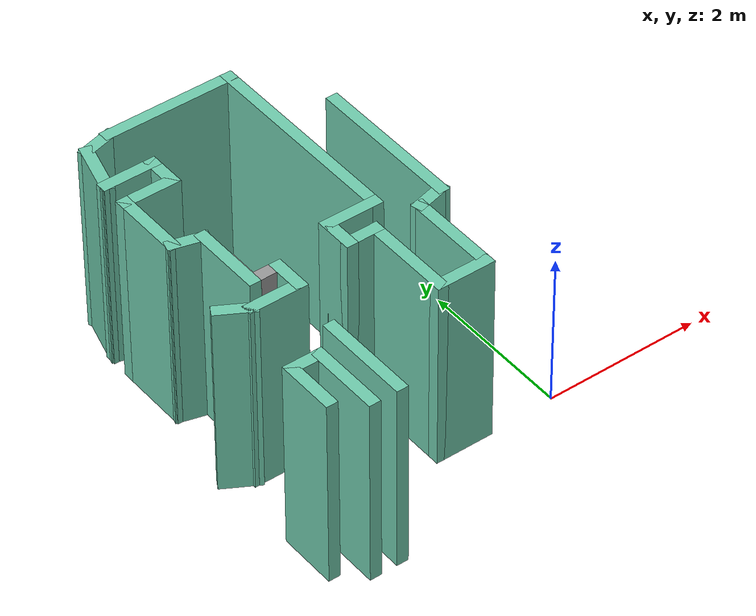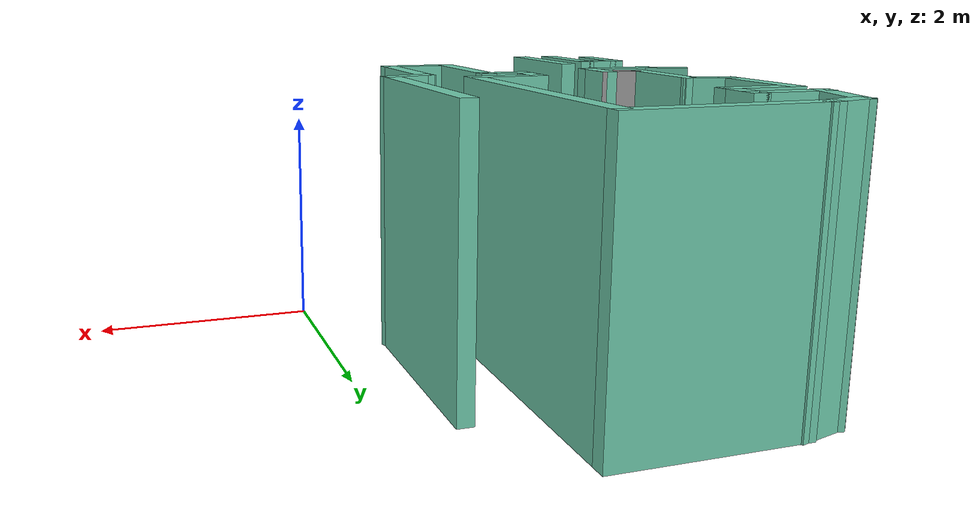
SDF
<sdf version="1.6">
 <world name="default">
  <model name="map_3">
   <pose>0.639107 -0.35531 0 0 -0 0</pose>
   <link name="Wall_10">
    <collision name="Wall_10_Collision">
     <geometry><box><size>0.5 0.15 2.5</size></box></geometry>
     <pose>0 0 1.25 0 -0 0</pose>
    </collision>
    <visual name="Wall_10_Visual">
     <pose>0 0 1.25 0 -0 0</pose>
     <geometry><box><size>0.5 0.15 2.5</size></box></geometry>
     <material>
      <script><uri>file://media/materials/scripts/gazebo.material</uri><name>Gazebo/Grey</name></script>
      <ambient>0.435294 0.796078 0.67451 1</ambient>
     </material>
     <meta><layer>0</layer></meta>
    </visual>
    <pose>-1.39882 1.53671 0 0 -0 -2.87979</pose>
   </link>
   <link name="Wall_11">
    <collision name="Wall_11_Collision">
     <geometry><box><size>1.25 0.15 2.5</size></box></geometry>
     <pose>0 0 1.25 0 -0 0</pose>
    </collision>
    <visual name="Wall_11_Visual">
     <pose>0 0 1.25 0 -0 0</pose>
     <geometry><box><size>1.25 0.15 2.5</size></box></geometry>
     <material>
      <script><uri>file://media/materials/scripts/gazebo.material</uri><name>Gazebo/Grey</name></script>
      <ambient>0.435294 0.796078 0.67451 1</ambient>
     </material>
     <meta><layer>0</layer></meta>
    </visual>
    <pose>-1.56786 0.941415 0 0 -0 -1.5708</pose>
   </link>
   <link name="Wall_12">
    <collision name="Wall_12_Collision">
     <geometry><box><size>0.75 0.15 2.5</size></box></geometry>
     <pose>0 0 1.25 0 -0 0</pose>
    </collision>
    <visual name="Wall_12_Visual">
     <pose>0 0 1.25 0 -0 0</pose>
     <geometry><box><size>0.75 0.15 2.5</size></box></geometry>
     <material>
      <script><uri>file://media/materials/scripts/gazebo.material</uri><name>Gazebo/Grey</name></script>
      <ambient>0.435294 0.796078 0.67451 1</ambient>
     </material>
     <meta><layer>0</layer></meta>
    </visual>
    <pose>-1.86786 0.391415 0 0 -0 3.14159</pose>
   </link>
   <link name="Wall_18">
    <collision name="Wall_18_Collision">
     <geometry><box><size>1.25 0.15 2.5</size></box></geometry>
     <pose>0 0 1.25 0 -0 0</pose>
    </collision>
    <visual name="Wall_18_Visual">
     <pose>0 0 1.25 0 -0 0</pose>
     <geometry><box><size>1.25 0.15 2.5</size></box></geometry>
     <material>
      <script><uri>file://media/materials/scripts/gazebo.material</uri><name>Gazebo/Grey</name></script>
      <ambient>0.435294 0.796078 0.67451 1</ambient>
     </material>
     <meta><layer>0</layer></meta>
    </visual>
    <pose>-2.16786 0.941415 0 0 -0 1.5708</pose>
   </link>
   <link name="Wall_19">
    <collision name="Wall_19_Collision">
     <geometry><box><size>0.5 0.15 2.5</size></box></geometry>
     <pose>0 0 1.25 0 -0 0</pose>
    </collision>
    <visual name="Wall_19_Visual">
     <pose>0 0 1.25 0 -0 0</pose>
     <geometry><box><size>0.5 0.15 2.5</size></box></geometry>
     <material>
      <script><uri>file://media/materials/scripts/gazebo.material</uri><name>Gazebo/Grey</name></script>
      <ambient>0.435294 0.796078 0.67451 1</ambient>
     </material>
     <meta><layer>0</layer></meta>
    </visual>
    <pose>-2.34286 1.49141 0 0 -0 3.14159</pose>
   </link>
   <link name="Wall_22">
    <collision name="Wall_22_Collision">
     <geometry><box><size>0.5 0.15 2.5</size></box></geometry>
     <pose>0 0 1.25 0 -0 0</pose>
    </collision>
    <visual name="Wall_22_Visual">
     <pose>0 0 1.25 0 -0 0</pose>
     <geometry><box><size>0.5 0.15 2.5</size></box></geometry>
     <material>
      <script><uri>file://media/materials/scripts/gazebo.material</uri><name>Gazebo/Grey</name></script>
      <ambient>0.435294 0.796078 0.67451 1</ambient>
     </material>
     <meta><layer>0</layer></meta>
    </visual>
    <pose>-2.51786 1.66641 0 0 -0 1.5708</pose>
   </link>
   <link name="Wall_23">
    <collision name="Wall_23_Collision">
     <geometry><box><size>0.75 0.15 2.5</size></box></geometry>
     <pose>0 0 1.25 0 -0 0</pose>
    </collision>
    <visual name="Wall_23_Visual">
     <pose>0 0 1.25 0 -0 0</pose>
     <geometry><box><size>0.75 0.15 2.5</size></box></geometry>
     <material>
      <script><uri>file://media/materials/scripts/gazebo.material</uri><name>Gazebo/Grey</name></script>
      <ambient>0.435294 0.796078 0.67451 1</ambient>
     </material>
     <meta><layer>0</layer></meta>
    </visual>
    <pose>-2.21786 1.84142 0 0 -0 0</pose>
   </link>
   <link name="Wall_24">
    <collision name="Wall_24_Collision">
     <geometry><box><size>2.75 0.15 2.5</size></box></geometry>
     <pose>0 0 1.25 0 -0 0</pose>
    </collision>
    <visual name="Wall_24_Visual">
     <pose>0 0 1.25 0 -0 0</pose>
     <geometry><box><size>2.75 0.15 2.5</size></box></geometry>
     <material>
      <script><uri>file://media/materials/scripts/gazebo.material</uri><name>Gazebo/Grey</name></script>
      <ambient>0.435294 0.796078 0.67451 1</ambient>
     </material>
     <meta><layer>0</layer></meta>
    </visual>
    <pose>-1.91786 3.14141 0 0 -0 1.5708</pose>
   </link>
   <link name="Wall_25">
    <collision name="Wall_25_Collision">
     <geometry><box><size>1.75 0.15 2.5</size></box></geometry>
     <pose>0 0 1.25 0 -0 0</pose>
    </collision>
    <visual name="Wall_25_Visual">
     <pose>0 0 1.25 0 -0 0</pose>
     <geometry><box><size>1.75 0.15 2.5</size></box></geometry>
     <material>
      <script><uri>file://media/materials/scripts/gazebo.material</uri><name>Gazebo/Grey</name></script>
      <ambient>0.435294 0.796078 0.67451 1</ambient>
     </material>
     <meta><layer>0</layer></meta>
    </visual>
    <pose>-2.71786 4.44142 0 0 -0 3.14159</pose>
   </link>
   <link name="Wall_26">
    <collision name="Wall_26_Collision">
     <geometry><box><size>0.5 0.15 2.5</size></box></geometry>
     <pose>0 0 1.25 0 -0 0</pose>
    </collision>
    <visual name="Wall_26_Visual">
     <pose>0 0 1.25 0 -0 0</pose>
     <geometry><box><size>0.5 0.15 2.5</size></box></geometry>
     <material>
      <script><uri>file://media/materials/scripts/gazebo.material</uri><name>Gazebo/Grey</name></script>
      <ambient>0.435294 0.796078 0.67451 1</ambient>
     </material>
     <meta><layer>0</layer></meta>
    </visual>
    <pose>-3.6869 4.39612 0 0 -0 -2.87979</pose>
   </link>
   <link name="Wall_27">
    <collision name="Wall_27_Collision">
     <geometry><box><size>0.75 0.15 2.5</size></box></geometry>
     <pose>0 0 1.25 0 -0 0</pose>
    </collision>
    <visual name="Wall_27_Visual">
     <pose>0 0 1.25 0 -0 0</pose>
     <geometry><box><size>0.75 0.15 2.5</size></box></geometry>
     <material>
      <script><uri>file://media/materials/scripts/gazebo.material</uri><name>Gazebo/Grey</name></script>
      <ambient>0.435294 0.796078 0.67451 1</ambient>
     </material>
     <meta><layer>0</layer></meta>
    </visual>
    <pose>-3.93358 4.06105 0 0 -0 -1.8326</pose>
   </link>
   <link name="Wall_28">
    <collision name="Wall_28_Collision">
     <geometry><box><size>0.75 0.15 2.5</size></box></geometry>
     <pose>0 0 1.25 0 -0 0</pose>
    </collision>
    <visual name="Wall_28_Visual">
     <pose>0 0 1.25 0 -0 0</pose>
     <geometry><box><size>0.75 0.15 2.5</size></box></geometry>
     <material>
      <script><uri>file://media/materials/scripts/gazebo.material</uri><name>Gazebo/Grey</name></script>
      <ambient>0.435294 0.796078 0.67451 1</ambient>
     </material>
     <meta><layer>0</layer></meta>
    </visual>
    <pose>-3.71123 3.77127 0 0 -0 0</pose>
   </link>
   <link name="Wall_29">
    <collision name="Wall_29_Collision">
     <geometry><box><size>0.5 0.15 2.5</size></box></geometry>
     <pose>0 0 1.25 0 -0 0</pose>
    </collision>
    <visual name="Wall_29_Visual">
     <pose>0 0 1.25 0 -0 0</pose>
     <geometry><box><size>0.5 0.15 2.5</size></box></geometry>
     <material>
      <script><uri>file://media/materials/scripts/gazebo.material</uri><name>Gazebo/Grey</name></script>
      <ambient>0.435294 0.796078 0.67451 1</ambient>
     </material>
     <meta><layer>0</layer></meta>
    </visual>
    <pose>-3.41123 3.59627 0 0 -0 -1.5708</pose>
   </link>
   <link name="Wall_30">
    <collision name="Wall_30_Collision">
     <geometry><box><size>0.75 0.15 2.5</size></box></geometry>
     <pose>0 0 1.25 0 -0 0</pose>
    </collision>
    <visual name="Wall_30_Visual">
     <pose>0 0 1.25 0 -0 0</pose>
     <geometry><box><size>0.75 0.15 2.5</size></box></geometry>
     <material>
      <script><uri>file://media/materials/scripts/gazebo.material</uri><name>Gazebo/Grey</name></script>
      <ambient>0.435294 0.796078 0.67451 1</ambient>
     </material>
     <meta><layer>0</layer></meta>
    </visual>
    <pose>-3.71123 3.42127 0 0 -0 3.14159</pose>
   </link>
   <link name="Wall_31">
    <collision name="Wall_31_Collision">
     <geometry><box><size>1 0.15 2.5</size></box></geometry>
     <pose>0 0 1.25 0 -0 0</pose>
    </collision>
    <visual name="Wall_31_Visual">
     <pose>0 0 1.25 0 -0 0</pose>
     <geometry><box><size>1 0.15 2.5</size></box></geometry>
     <material>
      <script><uri>file://media/materials/scripts/gazebo.material</uri><name>Gazebo/Grey</name></script>
      <ambient>0.435294 0.796078 0.67451 1</ambient>
     </material>
     <meta><layer>0</layer></meta>
    </visual>
    <pose>-4.01123 2.99627 0 0 -0 -1.5708</pose>
   </link>
   <link name="Wall_32">
    <collision name="Wall_32_Collision">
     <geometry><box><size>0.5 0.15 2.5</size></box></geometry>
     <pose>0 0 1.25 0 -0 0</pose>
    </collision>
    <visual name="Wall_32_Visual">
     <pose>0 0 1.25 0 -0 0</pose>
     <geometry><box><size>0.5 0.15 2.5</size></box></geometry>
     <material>
      <script><uri>file://media/materials/scripts/gazebo.material</uri><name>Gazebo/Grey</name></script>
      <ambient>0.435294 0.796078 0.67451 1</ambient>
     </material>
     <meta><layer>0</layer></meta>
    </visual>
    <pose>-3.84219 2.52598 0 0 -0 -0.261799</pose>
   </link>
   <link name="Wall_33">
    <collision name="Wall_33_Collision">
     <geometry><box><size>1 0.15 2.5</size></box></geometry>
     <pose>0 0 1.25 0 -0 0</pose>
    </collision>
    <visual name="Wall_33_Visual">
     <pose>0 0 1.25 0 -0 0</pose>
     <geometry><box><size>1 0.15 2.5</size></box></geometry>
     <material>
      <script><uri>file://media/materials/scripts/gazebo.material</uri><name>Gazebo/Grey</name></script>
      <ambient>0.435294 0.796078 0.67451 1</ambient>
     </material>
     <meta><layer>0</layer></meta>
    </visual>
    <pose>-3.67315 2.05569 0 0 -0 -1.5708</pose>
   </link>
   <link name="Wall_34">
    <collision name="Wall_34_Collision">
     <geometry><box><size>0.5 0.15 2.5</size></box></geometry>
     <pose>0 0 1.25 0 -0 0</pose>
    </collision>
    <visual name="Wall_34_Visual">
     <pose>0 0 1.25 0 -0 0</pose>
     <geometry><box><size>0.5 0.15 2.5</size></box></geometry>
     <material>
      <script><uri>file://media/materials/scripts/gazebo.material</uri><name>Gazebo/Grey</name></script>
      <ambient>1 1 1 1</ambient>
     </material>
     <meta><layer>0</layer></meta>
    </visual>
    <pose>-3.49815 1.63069 0 0 -0 0</pose>
   </link>
   <link name="Wall_35">
    <collision name="Wall_35_Collision">
     <geometry><box><size>0.5 0.15 2.5</size></box></geometry>
     <pose>0 0 1.25 0 -0 0</pose>
    </collision>
    <visual name="Wall_35_Visual">
     <pose>0 0 1.25 0 -0 0</pose>
     <geometry><box><size>0.5 0.15 2.5</size></box></geometry>
     <material>
      <script><uri>file://media/materials/scripts/gazebo.material</uri><name>Gazebo/Grey</name></script>
      <ambient>0.435294 0.796078 0.67451 1</ambient>
     </material>
     <meta><layer>0</layer></meta>
    </visual>
    <pose>-3.32315 1.45569 0 0 -0 -1.5708</pose>
   </link>
   <link name="Wall_36">
    <collision name="Wall_36_Collision">
     <geometry><box><size>0.75 0.15 2.5</size></box></geometry>
     <pose>0 0 1.25 0 -0 0</pose>
    </collision>
    <visual name="Wall_36_Visual">
     <pose>0 0 1.25 0 -0 0</pose>
     <geometry><box><size>0.75 0.15 2.5</size></box></geometry>
     <material>
      <script><uri>file://media/materials/scripts/gazebo.material</uri><name>Gazebo/Grey</name></script>
      <ambient>0.435294 0.796078 0.67451 1</ambient>
     </material>
     <meta><layer>0</layer></meta>
    </visual>
    <pose>-3.62315 1.28069 0 0 -0 3.14159</pose>
   </link>
   <link name="Wall_37">
    <collision name="Wall_37_Collision">
     <geometry><box><size>0.5 0.15 2.5</size></box></geometry>
     <pose>0 0 1.25 0 -0 0</pose>
    </collision>
    <visual name="Wall_37_Visual">
     <pose>0 0 1.25 0 -0 0</pose>
     <geometry><box><size>0.5 0.15 2.5</size></box></geometry>
     <material>
      <script><uri>file://media/materials/scripts/gazebo.material</uri><name>Gazebo/Grey</name></script>
      <ambient>0.435294 0.796078 0.67451 1</ambient>
     </material>
     <meta><layer>0</layer></meta>
    </visual>
    <pose>-4.07471 1.36819 0 0 -0 2.61799</pose>
   </link>
   <link name="Wall_46">
    <collision name="Wall_46_Collision">
     <geometry><box><size>0.75 0.15 2.5</size></box></geometry>
     <pose>0 0 1.25 0 -0 0</pose>
    </collision>
    <visual name="Wall_46_Visual">
     <pose>0 0 1.25 0 -0 0</pose>
     <geometry><box><size>0.75 0.15 2.5</size></box></geometry>
     <material>
      <script><uri>file://media/materials/scripts/gazebo.material</uri><name>Gazebo/Grey</name></script>
      <ambient>0.435294 0.796078 0.67451 1</ambient>
     </material>
     <meta><layer>0</layer></meta>
    </visual>
    <pose>-4.13568 -0.00624 0 0 -0 1.5708</pose>
   </link>
   <link name="Wall_47">
    <collision name="Wall_47_Collision">
     <geometry><box><size>0.5 0.15 2.5</size></box></geometry>
     <pose>0 0 1.25 0 -0 0</pose>
    </collision>
    <visual name="Wall_47_Visual">
     <pose>0 0 1.25 0 -0 0</pose>
     <geometry><box><size>0.5 0.15 2.5</size></box></geometry>
     <material>
      <script><uri>file://media/materials/scripts/gazebo.material</uri><name>Gazebo/Grey</name></script>
      <ambient>0.435294 0.796078 0.67451 1</ambient>
     </material>
     <meta><layer>0</layer></meta>
    </visual>
    <pose>-3.96068 0.29376 0 0 -0 0</pose>
   </link>
   <link name="Wall_48">
    <collision name="Wall_48_Collision">
     <geometry><box><size>1 0.15 2.5</size></box></geometry>
     <pose>0 0 1.25 0 -0 0</pose>
    </collision>
    <visual name="Wall_48_Visual">
     <pose>0 0 1.25 0 -0 0</pose>
     <geometry><box><size>1 0.15 2.5</size></box></geometry>
     <material>
      <script><uri>file://media/materials/scripts/gazebo.material</uri><name>Gazebo/Grey</name></script>
      <ambient>0.435294 0.796078 0.67451 1</ambient>
     </material>
     <meta><layer>0</layer></meta>
    </visual>
    <pose>-3.78568 -0.13124 0 0 -0 -1.5708</pose>
   </link>
   <link name="Wall_50">
    <collision name="Wall_50_Collision">
     <geometry><box><size>1.25 0.15 2.5</size></box></geometry>
     <pose>0 0 1.25 0 -0 0</pose>
    </collision>
    <visual name="Wall_50_Visual">
     <pose>0 0 1.25 0 -0 0</pose>
     <geometry><box><size>1.25 0.15 2.5</size></box></geometry>
     <material>
      <script><uri>file://media/materials/scripts/gazebo.material</uri><name>Gazebo/Grey</name></script>
      <ambient>0.435294 0.796078 0.67451 1</ambient>
     </material>
     <meta><layer>0</layer></meta>
    </visual>
    <pose>-3.43568 -0.00624 0 0 -0 1.5708</pose>
   </link>
   <link name="Wall_9">
    <collision name="Wall_9_Collision">
     <geometry><box><size>2 0.15 2.5</size></box></geometry>
     <pose>0 0 1.25 0 -0 0</pose>
    </collision>
    <visual name="Wall_9_Visual">
     <pose>0 0 1.25 0 -0 0</pose>
     <geometry><box><size>2 0.15 2.5</size></box></geometry>
     <material>
      <script><uri>file://media/materials/scripts/gazebo.material</uri><name>Gazebo/Grey</name></script>
      <ambient>0.435294 0.796078 0.67451 1</ambient>
     </material>
     <meta><layer>0</layer></meta>
    </visual>
    <pose>-1.22979 2.507 0 0 -0 -1.5708</pose>
   </link>
   <static>1</static>
  </model>
  <model name="6_Cube_StorageE">
   <link name="Wall_0">
    <pose>0 0 0.01 0 -0 0</pose>
    <inertial>
     <mass>1.6201</mass>
     <inertia><ixx>0.0119</ixx><iyy>0.0631</iyy><izz>0.0513</izz><ixy>0</ixy><ixz>0</ixz><iyz>0</iyz></inertia>
    </inertial>
    <collision name="Wall_0_Collision"><geometry><box><size>0.616 0.296 0.02</size></box></geometry></collision>
    <visual name="Wall_0_Visual">
     <geometry><box><size>0.616 0.296 0.02</size></box></geometry>
     <material>
      <script><uri>file://media/materials/scripts/gazebo.material</uri><name>Gazebo/Grey</name></script>
      <ambient>0.105882 0.0509804 0 1</ambient>
     </material>
    </visual>
   </link>
   <joint name="0_2" type="fixed">
    <pose>-0.308 0 0 0 -0 0</pose>
    <parent>Wall_2</parent>
    <child>Wall_0</child>
    <axis>
     <xyz>1 0 0</xyz>
     <use_parent_model_frame>0</use_parent_model_frame>
     <limit><lower>-1e+16</lower><upper>1e+16</upper></limit>
    </axis>
   </joint>
   <joint name="0_12" type="fixed">
    <parent>Wall_12</parent>
    <child>Wall_0</child>
    <axis>
     <xyz>0 0 1</xyz>
     <use_parent_model_frame>0</use_parent_model_frame>
     <limit><lower>-1e+16</lower><upper>1e+16</upper></limit>
    </axis>
   </joint>
   <joint name="0_4" type="fixed">
    <pose>0.308 0 0 0 -0 0</pose>
    <parent>Wall_4</parent>
    <child>Wall_0</child>
    <axis>
     <xyz>1 0 0</xyz>
     <use_parent_model_frame>0</use_parent_model_frame>
     <limit><lower>-1e+16</lower><upper>1e+16</upper></limit>
    </axis>
   </joint>
   <link name="Wall_10">
    <pose>0 0 0.61 0 -0 0</pose>
    <inertial>
     <mass>1.6201</mass>
     <inertia><ixx>0.0119</ixx><iyy>0.0631</iyy><izz>0.0513</izz><ixy>0</ixy><ixz>0</ixz><iyz>0</iyz></inertia>
    </inertial>
    <collision name="Wall_10_Collision"><geometry><box><size>0.616 0.296 0.02</size></box></geometry></collision>
    <visual name="Wall_10_Visual">
     <geometry><box><size>0.616 0.296 0.02</size></box></geometry>
     <material>
      <script><uri>file://media/materials/scripts/gazebo.material</uri><name>Gazebo/Grey</name></script>
      <ambient>0.105882 0.0509804 0 1</ambient>
     </material>
    </visual>
   </link>
   <joint name="10_2" type="fixed">
    <pose>-0.308 0 0 0 -0 0</pose>
    <parent>Wall_2</parent>
    <child>Wall_10</child>
    <axis>
     <xyz>1 0 0</xyz>
     <use_parent_model_frame>0</use_parent_model_frame>
     <limit><lower>-1e+16</lower><upper>1e+16</upper></limit>
    </axis>
   </joint>
   <joint name="10_12" type="fixed">
    <parent>Wall_12</parent>
    <child>Wall_10</child>
    <axis>
     <xyz>0 0 1</xyz>
     <use_parent_model_frame>0</use_parent_model_frame>
     <limit><lower>-1e+16</lower><upper>1e+16</upper></limit>
    </axis>
   </joint>
   <joint name="10_4" type="fixed">
    <pose>0.308 0 0 0 -0 0</pose>
    <parent>Wall_4</parent>
    <child>Wall_10</child>
    <axis>
     <xyz>1 0 0</xyz>
     <use_parent_model_frame>0</use_parent_model_frame>
     <limit><lower>-1e+16</lower><upper>1e+16</upper></limit>
    </axis>
   </joint>
   <link name="Wall_12">
    <pose>0 0 0.4575 0 -0 0</pose>
    <inertial>
     <mass>2.4065</mass>
     <inertia><ixx>0.0177</ixx><iyy>0.1855</iyy><izz>0.168</izz><ixy>0</ixy><ixz>0</ixz><iyz>0</iyz></inertia>
    </inertial>
    <collision name="Wall_12_Collision"><geometry><box><size>0.02 0.296 0.915</size></box></geometry></collision>
    <visual name="Wall_12_Visual">
     <geometry><box><size>0.02 0.296 0.915</size></box></geometry>
     <material>
      <script><uri>file://media/materials/scripts/gazebo.material</uri><name>Gazebo/Grey</name></script>
      <ambient>0.105882 0.0509804 0 1</ambient>
     </material>
    </visual>
   </link>
   <link name="Wall_2">
    <pose>-0.298 0 0.4575 0 -0 0</pose>
    <inertial>
     <mass>2.4065</mass>
     <inertia><ixx>0.0177</ixx><iyy>0.1855</iyy><izz>0.168</izz><ixy>0</ixy><ixz>0</ixz><iyz>0</iyz></inertia>
    </inertial>
    <collision name="Wall_2_Collision"><geometry><box><size>0.02 0.296 0.915</size></box></geometry></collision>
    <visual name="Wall_2_Visual">
     <geometry><box><size>0.02 0.296 0.915</size></box></geometry>
     <material>
      <script><uri>file://media/materials/scripts/gazebo.material</uri><name>Gazebo/Grey</name></script>
      <ambient>0.105882 0.0509804 0 1</ambient>
     </material>
    </visual>
   </link>
   <link name="Wall_4">
    <pose>0.298 0 0.4575 0 -0 0</pose>
    <inertial>
     <mass>2.4065</mass>
     <inertia><ixx>0.0177</ixx><iyy>0.1855</iyy><izz>0.168</izz><ixy>0</ixy><ixz>0</ixz><iyz>0</iyz></inertia>
    </inertial>
    <collision name="Wall_4_Collision"><geometry><box><size>0.02 0.296 0.915</size></box></geometry></collision>
    <visual name="Wall_4_Visual">
     <geometry><box><size>0.02 0.296 0.915</size></box></geometry>
     <material>
      <script><uri>file://media/materials/scripts/gazebo.material</uri><name>Gazebo/Grey</name></script>
      <ambient>0.105882 0.0509804 0 1</ambient>
     </material>
    </visual>
   </link>
   <link name="Wall_6">
    <pose>0 0 0.905 0 -0 0</pose>
    <inertial>
     <mass>1.6201</mass>
     <inertia><ixx>0.0119</ixx><iyy>0.0631</iyy><izz>0.0513</izz><ixy>0</ixy><ixz>0</ixz><iyz>0</iyz></inertia>
    </inertial>
    <collision name="Wall_6_Collision"><geometry><box><size>0.616 0.296 0.02</size></box></geometry></collision>
    <visual name="Wall_6_Visual">
     <geometry><box><size>0.616 0.296 0.02</size></box></geometry>
     <material>
      <script><uri>file://media/materials/scripts/gazebo.material</uri><name>Gazebo/Grey</name></script>
      <ambient>0.105882 0.0509804 0 1</ambient>
     </material>
    </visual>
   </link>
   <joint name="6_2" type="fixed">
    <pose>-0.308 0 0 0 -0 0</pose>
    <parent>Wall_2</parent>
    <child>Wall_6</child>
    <axis>
     <xyz>2 0 0</xyz>
     <use_parent_model_frame>0</use_parent_model_frame>
     <limit><lower>-1e+16</lower><upper>1e+16</upper></limit>
    </axis>
   </joint>
   <joint name="6_12" type="fixed">
    <parent>Wall_12</parent>
    <child>Wall_6</child>
    <axis>
     <xyz>0 0 1</xyz>
     <use_parent_model_frame>0</use_parent_model_frame>
     <limit><lower>-1e+16</lower><upper>1e+16</upper></limit>
    </axis>
   </joint>
   <joint name="6_4" type="fixed">
    <pose>0.308 0 0 0 -0 0</pose>
    <parent>Wall_4</parent>
    <child>Wall_6</child>
    <axis>
     <xyz>1 0 0</xyz>
     <use_parent_model_frame>0</use_parent_model_frame>
     <limit><lower>-1e+16</lower><upper>1e+16</upper></limit>
    </axis>
   </joint>
   <link name="Wall_8">
    <pose>0 0 0.305 0 -0 0</pose>
    <inertial>
     <mass>1.6201</mass>
     <inertia><ixx>0.0119</ixx><iyy>0.0631</iyy><izz>0.0513</izz><ixy>0</ixy><ixz>0</ixz><iyz>0</iyz></inertia>
    </inertial>
    <collision name="Wall_8_Collision"><geometry><box><size>0.616 0.296 0.02</size></box></geometry></collision>
    <visual name="Wall_8_Visual">
     <geometry><box><size>0.616 0.296 0.02</size></box></geometry>
     <material>
      <script><uri>file://media/materials/scripts/gazebo.material</uri><name>Gazebo/Grey</name></script>
      <ambient>0.105882 0.0509804 0 1</ambient>
     </material>
    </visual>
   </link>
   <joint name="8_2" type="fixed">
    <pose>-0.308 0 0 0 -0 0</pose>
    <parent>Wall_2</parent>
    <child>Wall_8</child>
    <axis>
     <xyz>1 0 0</xyz>
     <use_parent_model_frame>0</use_parent_model_frame>
     <limit><lower>-1e+16</lower><upper>1e+16</upper></limit>
    </axis>
   </joint>
   <joint name="8_12" type="fixed">
    <parent>Wall_12</parent>
    <child>Wall_8</child>
    <axis>
     <xyz>0 0 1</xyz>
     <use_parent_model_frame>0</use_parent_model_frame>
     <limit><lower>-1e+16</lower><upper>1e+16</upper></limit>
    </axis>
   </joint>
   <joint name="8_4" type="fixed">
    <pose>0.308 0 0 0 -0 0</pose>
    <parent>Wall_4</parent>
    <child>Wall_8</child>
    <axis>
     <xyz>1 0 0</xyz>
     <use_parent_model_frame>0</use_parent_model_frame>
     <limit><lower>-1e+16</lower><upper>1e+16</upper></limit>
    </axis>
   </joint>
   <static>1</static>
   <pose>-2.46992 2.798 0 0 -0 0</pose>
  </model>
 </world>
</sdf>
